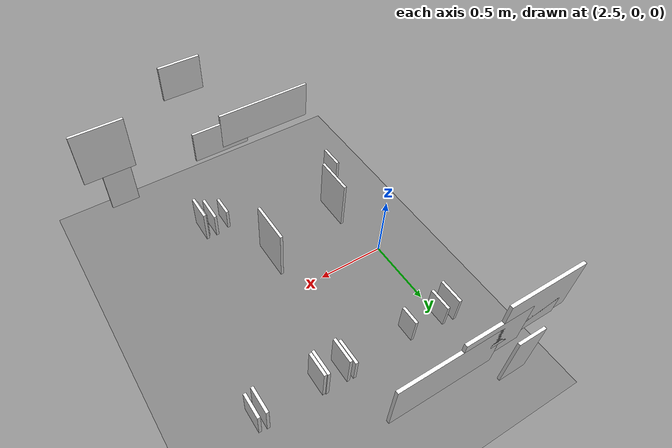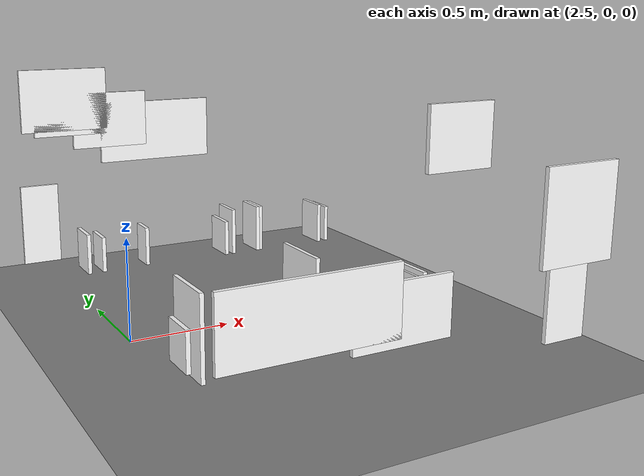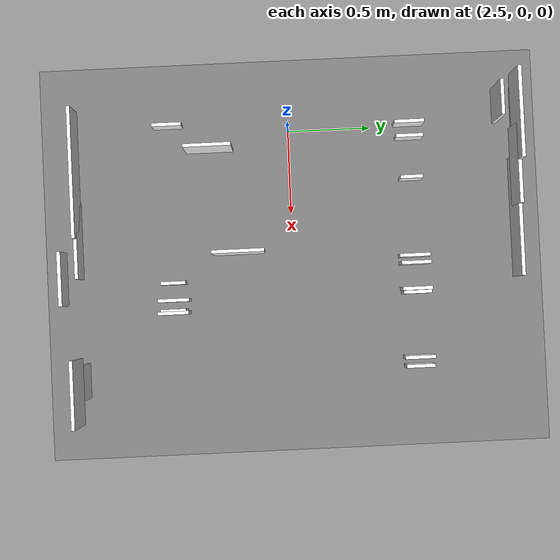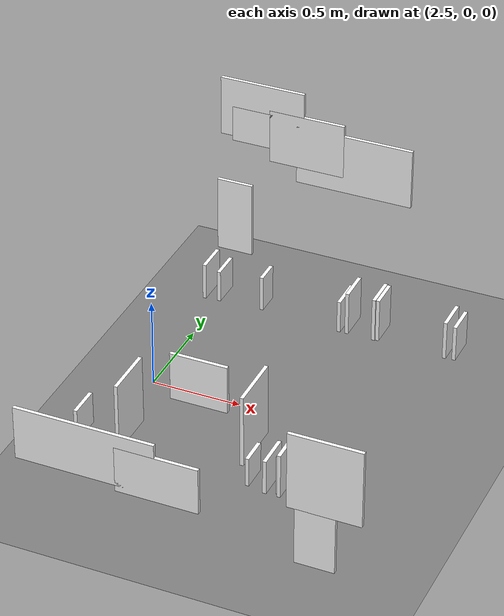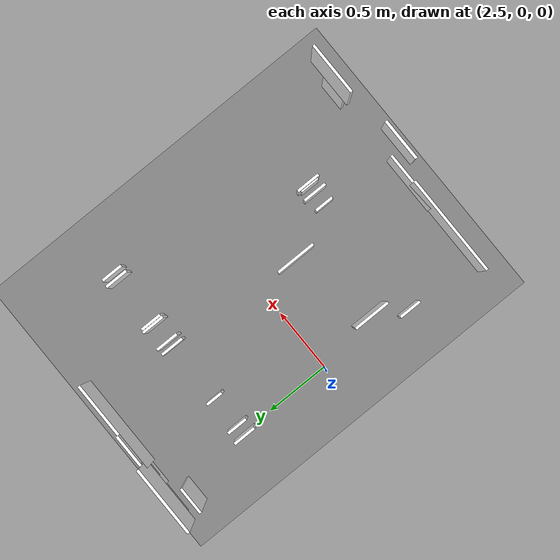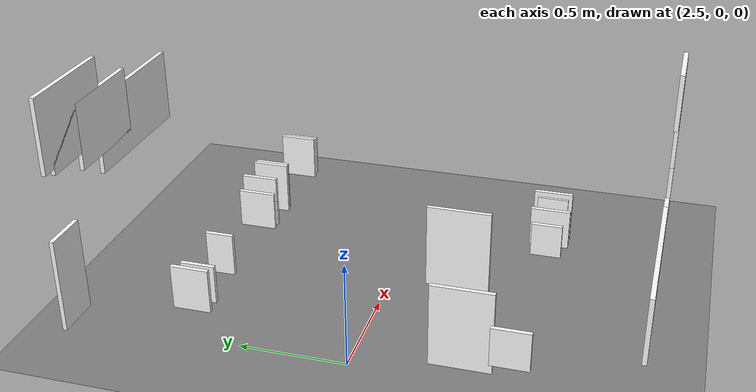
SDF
<sdf version="1.9">
 <world name="tunnel_world">
  <model name="ground_plane">
   <static>true</static>
   <link name="ground">
    <collision name="ground_collision">
     <geometry><plane><normal>0 0 1</normal><size>100 100</size></plane></geometry>
    </collision>
    <visual name="ground_visual">
     <geometry><plane><normal>0 0 1</normal><size>100 100</size></plane></geometry>
     <material>
      <diffuse>0.50 0.50 0.50 1</diffuse>
      <emissive>0.08 0.08 0.08 1</emissive>
      <ambient>0.5 0.5 0.5</ambient>
     </material>
    </visual>
   </link>
  </model>
  <model name="defect_crack_05">
   <static>true</static>
   <pose>3.364 -1.25 1.076 0 0 0</pose>
   <link name="link">
    <visual name="visual">
     <laser_retro>500</laser_retro>
     <geometry><box><size>0.291 0.02 0.254</size></box></geometry>
     <material>
      <ambient>1 1 1 1</ambient>
      <diffuse>1 1 1 1</diffuse>
      <emissive>0.05 0.05 0.05 1</emissive>
      <specular>0.05 0.05 0.05 1</specular>
      <pbr>
       <metal>
        <albedo_map>file:///home/ylf/workspace/inspection_robot/data_gen/textures_data1/crack_12.png</albedo_map>
        <metalness>0.0</metalness>
        <roughness>0.9</roughness>
       </metal>
      </pbr>
     </material>
    </visual>
    <collision name="collision"><geometry><box><size>0.291 0.02 0.254</size></box></geometry></collision>
   </link>
  </model>
  <model name="defect_crack_13">
   <static>true</static>
   <pose>2.619 1.25 0.903 0 0 0</pose>
   <link name="link">
    <visual name="visual">
     <laser_retro>500</laser_retro>
     <geometry><box><size>0.434 0.02 0.211</size></box></geometry>
     <material>
      <ambient>1 1 1 1</ambient>
      <diffuse>1 1 1 1</diffuse>
      <emissive>0.05 0.05 0.05 1</emissive>
      <specular>0.05 0.05 0.05 1</specular>
      <pbr>
       <metal>
        <albedo_map>file:///home/ylf/workspace/inspection_robot/data_gen/textures_data1/crack_9.png</albedo_map>
        <metalness>0.0</metalness>
        <roughness>0.9</roughness>
       </metal>
      </pbr>
     </material>
    </visual>
    <collision name="collision"><geometry><box><size>0.434 0.02 0.211</size></box></geometry></collision>
   </link>
  </model>
  <model name="defect_crack_22">
   <static>true</static>
   <pose>2.841 1.25 0.875 0 0 0</pose>
   <link name="link">
    <visual name="visual">
     <laser_retro>500</laser_retro>
     <geometry><box><size>0.438 0.02 0.317</size></box></geometry>
     <material>
      <ambient>1 1 1 1</ambient>
      <diffuse>1 1 1 1</diffuse>
      <emissive>0.05 0.05 0.05 1</emissive>
      <specular>0.05 0.05 0.05 1</specular>
      <pbr>
       <metal>
        <albedo_map>file:///home/ylf/workspace/inspection_robot/data_gen/textures_data1/crack_21.png</albedo_map>
        <metalness>0.0</metalness>
        <roughness>0.9</roughness>
       </metal>
      </pbr>
     </material>
    </visual>
    <collision name="collision"><geometry><box><size>0.438 0.02 0.317</size></box></geometry></collision>
   </link>
  </model>
  <model name="defect_equip_bracket_loose_01">
   <static>true</static>
   <pose>2.411 1.25 0.299 0 0 0</pose>
   <link name="link">
    <visual name="visual">
     <laser_retro>760</laser_retro>
     <geometry><box><size>0.209 0.02 0.449</size></box></geometry>
     <material>
      <ambient>1 1 1 1</ambient>
      <diffuse>1 1 1 1</diffuse>
      <emissive>0.05 0.05 0.05 1</emissive>
      <specular>0.05 0.05 0.05 1</specular>
      <pbr>
       <metal>
        <albedo_map>file:///home/ylf/workspace/inspection_robot/data_gen/textures_data1/equip_bracket_loose_12.png</albedo_map>
        <metalness>0.0</metalness>
        <roughness>0.9</roughness>
       </metal>
      </pbr>
     </material>
    </visual>
    <collision name="collision"><geometry><box><size>0.209 0.02 0.449</size></box></geometry></collision>
   </link>
  </model>
  <model name="defect_equip_bracket_loose_08">
   <static>true</static>
   <pose>3.955 -1.25 0.338 0 0 0</pose>
   <link name="link">
    <visual name="visual">
     <laser_retro>760</laser_retro>
     <geometry><box><size>0.209 0.02 0.321</size></box></geometry>
     <material>
      <ambient>1 1 1 1</ambient>
      <diffuse>1 1 1 1</diffuse>
      <emissive>0.05 0.05 0.05 1</emissive>
      <specular>0.05 0.05 0.05 1</specular>
      <pbr>
       <metal>
        <albedo_map>file:///home/ylf/workspace/inspection_robot/data_gen/textures_data1/equip_bracket_loose_9.png</albedo_map>
        <metalness>0.0</metalness>
        <roughness>0.9</roughness>
       </metal>
      </pbr>
     </material>
    </visual>
    <collision name="collision"><geometry><box><size>0.209 0.02 0.321</size></box></geometry></collision>
   </link>
  </model>
  <model name="defect_equip_intrusion_05">
   <static>true</static>
   <pose>3.229 -0.325 0.22 0 0 0</pose>
   <link name="link">
    <visual name="visual">
     <laser_retro>900</laser_retro>
     <geometry><box><size>0.02 0.309 0.42</size></box></geometry>
     <material>
      <ambient>1 1 1 1</ambient>
      <diffuse>1 1 1 1</diffuse>
      <emissive>0.05 0.05 0.05 1</emissive>
      <specular>0.05 0.05 0.05 1</specular>
      <pbr>
       <metal>
        <albedo_map>file:///home/ylf/workspace/inspection_robot/data_gen/textures_data1/equip_intrusion_3.png</albedo_map>
        <metalness>0.0</metalness>
        <roughness>0.9</roughness>
       </metal>
      </pbr>
     </material>
    </visual>
   </link>
  </model>
  <model name="defect_equip_intrusion_10">
   <static>true</static>
   <pose>2.598 -0.481 0.21 0 0 0</pose>
   <link name="link">
    <visual name="visual">
     <laser_retro>900</laser_retro>
     <geometry><box><size>0.02 0.284 0.4</size></box></geometry>
     <material>
      <ambient>1 1 1 1</ambient>
      <diffuse>1 1 1 1</diffuse>
      <emissive>0.05 0.05 0.05 1</emissive>
      <specular>0.05 0.05 0.05 1</specular>
      <pbr>
       <metal>
        <albedo_map>file:///home/ylf/workspace/inspection_robot/data_gen/textures_data1/equip_intrusion_2.png</albedo_map>
        <metalness>0.0</metalness>
        <roughness>0.9</roughness>
       </metal>
      </pbr>
     </material>
    </visual>
   </link>
  </model>
  <model name="defect_leakage_03">
   <static>true</static>
   <pose>3.119 1.25 0.798 0 0 0</pose>
   <link name="link">
    <visual name="visual">
     <laser_retro>300</laser_retro>
     <geometry><box><size>0.671 0.02 0.348</size></box></geometry>
     <material>
      <ambient>1 1 1 1</ambient>
      <diffuse>1 1 1 1</diffuse>
      <emissive>0.05 0.05 0.05 1</emissive>
      <specular>0.05 0.05 0.05 1</specular>
      <pbr>
       <metal>
        <albedo_map>file:///home/ylf/workspace/inspection_robot/data_gen/textures_data1/leakage_12.png</albedo_map>
        <metalness>0.0</metalness>
        <roughness>0.9</roughness>
       </metal>
      </pbr>
     </material>
    </visual>
    <collision name="collision"><geometry><box><size>0.671 0.02 0.348</size></box></geometry></collision>
   </link>
  </model>
  <model name="defect_leakage_15">
   <static>true</static>
   <pose>2.745 -1.25 0.488 0 0 0</pose>
   <link name="link">
    <visual name="visual">
     <laser_retro>300</laser_retro>
     <geometry><box><size>0.757 0.02 0.301</size></box></geometry>
     <material>
      <ambient>1 1 1 1</ambient>
      <diffuse>1 1 1 1</diffuse>
      <emissive>0.05 0.05 0.05 1</emissive>
      <specular>0.05 0.05 0.05 1</specular>
      <pbr>
       <metal>
        <albedo_map>file:///home/ylf/workspace/inspection_robot/data_gen/textures_data1/leakage_19.png</albedo_map>
        <metalness>0.0</metalness>
        <roughness>0.9</roughness>
       </metal>
      </pbr>
     </material>
    </visual>
    <collision name="collision"><geometry><box><size>0.757 0.02 0.301</size></box></geometry></collision>
   </link>
  </model>
  <model name="defect_rail_fastener_broken_08">
   <static>true</static>
   <pose>2.508 0.717 0.261 0 0 0</pose>
   <link name="link">
    <visual name="visual">
     <laser_retro>450</laser_retro>
     <geometry><box><size>0.02 0.176 0.211</size></box></geometry>
     <material>
      <ambient>1 1 1 1</ambient>
      <diffuse>1 1 1 1</diffuse>
      <emissive>0.05 0.05 0.05 1</emissive>
      <specular>0.05 0.05 0.05 1</specular>
      <pbr>
       <metal>
        <albedo_map>file:///home/ylf/workspace/inspection_robot/data_gen/textures_data1/rail_fastener_broken_23.png</albedo_map>
        <metalness>0.0</metalness>
        <roughness>0.9</roughness>
       </metal>
      </pbr>
     </material>
    </visual>
   </link>
  </model>
  <model name="defect_rail_fastener_broken_09">
   <static>true</static>
   <pose>3.494 0.717 0.282 0 0 0</pose>
   <link name="link">
    <visual name="visual">
     <laser_retro>450</laser_retro>
     <geometry><box><size>0.02 0.175 0.253</size></box></geometry>
     <material>
      <ambient>1 1 1 1</ambient>
      <diffuse>1 1 1 1</diffuse>
      <emissive>0.05 0.05 0.05 1</emissive>
      <specular>0.05 0.05 0.05 1</specular>
      <pbr>
       <metal>
        <albedo_map>file:///home/ylf/workspace/inspection_robot/data_gen/textures_data1/rail_fastener_broken_18.png</albedo_map>
        <metalness>0.0</metalness>
        <roughness>0.9</roughness>
       </metal>
      </pbr>
     </material>
    </visual>
   </link>
  </model>
  <model name="defect_rail_fastener_broken_16">
   <static>true</static>
   <pose>3.342 0.717 0.281 0 0 0</pose>
   <link name="link">
    <visual name="visual">
     <laser_retro>450</laser_retro>
     <geometry><box><size>0.02 0.175 0.252</size></box></geometry>
     <material>
      <ambient>1 1 1 1</ambient>
      <diffuse>1 1 1 1</diffuse>
      <emissive>0.05 0.05 0.05 1</emissive>
      <specular>0.05 0.05 0.05 1</specular>
      <pbr>
       <metal>
        <albedo_map>file:///home/ylf/workspace/inspection_robot/data_gen/textures_data1/rail_fastener_broken_10.png</albedo_map>
        <metalness>0.0</metalness>
        <roughness>0.9</roughness>
       </metal>
      </pbr>
     </material>
    </visual>
   </link>
  </model>
  <model name="defect_rail_fastener_loose_02">
   <static>true</static>
   <pose>3.562 -0.717 0.268 0 0 0</pose>
   <link name="link">
    <visual name="visual">
     <laser_retro>380</laser_retro>
     <geometry><box><size>0.02 0.147 0.226</size></box></geometry>
     <material>
      <ambient>1 1 1 1</ambient>
      <diffuse>1 1 1 1</diffuse>
      <emissive>0.05 0.05 0.05 1</emissive>
      <specular>0.05 0.05 0.05 1</specular>
      <pbr>
       <metal>
        <albedo_map>file:///home/ylf/workspace/inspection_robot/data_gen/textures_data1/rail_fastener_loose_1.png</albedo_map>
        <metalness>0.0</metalness>
        <roughness>0.9</roughness>
       </metal>
      </pbr>
     </material>
    </visual>
   </link>
  </model>
  <model name="defect_rail_fastener_loose_03">
   <static>true</static>
   <pose>3.898 0.717 0.266 0 0 0</pose>
   <link name="link">
    <visual name="visual">
     <laser_retro>380</laser_retro>
     <geometry><box><size>0.02 0.178 0.222</size></box></geometry>
     <material>
      <ambient>1 1 1 1</ambient>
      <diffuse>1 1 1 1</diffuse>
      <emissive>0.05 0.05 0.05 1</emissive>
      <specular>0.05 0.05 0.05 1</specular>
      <pbr>
       <metal>
        <albedo_map>file:///home/ylf/workspace/inspection_robot/data_gen/textures_data1/rail_fastener_loose_15.png</albedo_map>
        <metalness>0.0</metalness>
        <roughness>0.9</roughness>
       </metal>
      </pbr>
     </material>
    </visual>
   </link>
  </model>
  <model name="defect_rail_fastener_loose_18">
   <static>true</static>
   <pose>3.95 0.717 0.257 0 0 0</pose>
   <link name="link">
    <visual name="visual">
     <laser_retro>380</laser_retro>
     <geometry><box><size>0.02 0.167 0.204</size></box></geometry>
     <material>
      <ambient>1 1 1 1</ambient>
      <diffuse>1 1 1 1</diffuse>
      <emissive>0.05 0.05 0.05 1</emissive>
      <specular>0.05 0.05 0.05 1</specular>
      <pbr>
       <metal>
        <albedo_map>file:///home/ylf/workspace/inspection_robot/data_gen/textures_data1/rail_fastener_loose_21.png</albedo_map>
        <metalness>0.0</metalness>
        <roughness>0.9</roughness>
       </metal>
      </pbr>
     </material>
    </visual>
   </link>
  </model>
  <model name="defect_rail_fastener_loose_19">
   <static>true</static>
   <pose>2.836 0.717 0.257 0 0 0</pose>
   <link name="link">
    <visual name="visual">
     <laser_retro>380</laser_retro>
     <geometry><box><size>0.02 0.131 0.205</size></box></geometry>
     <material>
      <ambient>1 1 1 1</ambient>
      <diffuse>1 1 1 1</diffuse>
      <emissive>0.05 0.05 0.05 1</emissive>
      <specular>0.05 0.05 0.05 1</specular>
      <pbr>
       <metal>
        <albedo_map>file:///home/ylf/workspace/inspection_robot/data_gen/textures_data1/rail_fastener_loose_12.png</albedo_map>
        <metalness>0.0</metalness>
        <roughness>0.9</roughness>
       </metal>
      </pbr>
     </material>
    </visual>
   </link>
  </model>
  <model name="defect_rail_fastener_loose_20">
   <static>true</static>
   <pose>2.46 -0.717 0.247 0 0 0</pose>
   <link name="link">
    <visual name="visual">
     <laser_retro>380</laser_retro>
     <geometry><box><size>0.02 0.173 0.184</size></box></geometry>
     <material>
      <ambient>1 1 1 1</ambient>
      <diffuse>1 1 1 1</diffuse>
      <emissive>0.05 0.05 0.05 1</emissive>
      <specular>0.05 0.05 0.05 1</specular>
      <pbr>
       <metal>
        <albedo_map>file:///home/ylf/workspace/inspection_robot/data_gen/textures_data1/rail_fastener_loose_6.png</albedo_map>
        <metalness>0.0</metalness>
        <roughness>0.9</roughness>
       </metal>
      </pbr>
     </material>
    </visual>
   </link>
  </model>
  <model name="defect_rail_fastener_missing_01">
   <static>true</static>
   <pose>3.297 0.717 0.25 0 0 0</pose>
   <link name="link">
    <visual name="visual">
     <laser_retro>520</laser_retro>
     <geometry><box><size>0.02 0.18 0.189</size></box></geometry>
     <material>
      <ambient>1 1 1 1</ambient>
      <diffuse>1 1 1 1</diffuse>
      <emissive>0.05 0.05 0.05 1</emissive>
      <specular>0.05 0.05 0.05 1</specular>
      <pbr>
       <metal>
        <albedo_map>file:///home/ylf/workspace/inspection_robot/data_gen/textures_data1/rail_fastener_missing_8.png</albedo_map>
        <metalness>0.0</metalness>
        <roughness>0.9</roughness>
       </metal>
      </pbr>
     </material>
    </visual>
   </link>
  </model>
  <model name="defect_rail_fastener_missing_06">
   <static>true</static>
   <pose>3.575 -0.717 0.28 0 0 0</pose>
   <link name="link">
    <visual name="visual">
     <laser_retro>520</laser_retro>
     <geometry><box><size>0.02 0.183 0.251</size></box></geometry>
     <material>
      <ambient>1 1 1 1</ambient>
      <diffuse>1 1 1 1</diffuse>
      <emissive>0.05 0.05 0.05 1</emissive>
      <specular>0.05 0.05 0.05 1</specular>
      <pbr>
       <metal>
        <albedo_map>file:///home/ylf/workspace/inspection_robot/data_gen/textures_data1/rail_fastener_missing_7.png</albedo_map>
        <metalness>0.0</metalness>
        <roughness>0.9</roughness>
       </metal>
      </pbr>
     </material>
    </visual>
   </link>
  </model>
  <model name="defect_rail_fastener_missing_09">
   <static>true</static>
   <pose>3.5 -0.717 0.252 0 0 0</pose>
   <link name="link">
    <visual name="visual">
     <laser_retro>520</laser_retro>
     <geometry><box><size>0.02 0.187 0.194</size></box></geometry>
     <material>
      <ambient>1 1 1 1</ambient>
      <diffuse>1 1 1 1</diffuse>
      <emissive>0.05 0.05 0.05 1</emissive>
      <specular>0.05 0.05 0.05 1</specular>
      <pbr>
       <metal>
        <albedo_map>file:///home/ylf/workspace/inspection_robot/data_gen/textures_data1/rail_fastener_missing_20.png</albedo_map>
        <metalness>0.0</metalness>
        <roughness>0.9</roughness>
       </metal>
      </pbr>
     </material>
    </visual>
   </link>
  </model>
  <model name="defect_rail_fastener_missing_13">
   <static>true</static>
   <pose>3.515 0.717 0.281 0 0 0</pose>
   <link name="link">
    <visual name="visual">
     <laser_retro>520</laser_retro>
     <geometry><box><size>0.02 0.164 0.252</size></box></geometry>
     <material>
      <ambient>1 1 1 1</ambient>
      <diffuse>1 1 1 1</diffuse>
      <emissive>0.05 0.05 0.05 1</emissive>
      <specular>0.05 0.05 0.05 1</specular>
      <pbr>
       <metal>
        <albedo_map>file:///home/ylf/workspace/inspection_robot/data_gen/textures_data1/rail_fastener_missing_10.png</albedo_map>
        <metalness>0.0</metalness>
        <roughness>0.9</roughness>
       </metal>
      </pbr>
     </material>
    </visual>
   </link>
  </model>
  <model name="defect_rail_fastener_missing_17">
   <static>true</static>
   <pose>3.398 -0.717 0.238 0 0 0</pose>
   <link name="link">
    <visual name="visual">
     <laser_retro>520</laser_retro>
     <geometry><box><size>0.02 0.146 0.165</size></box></geometry>
     <material>
      <ambient>1 1 1 1</ambient>
      <diffuse>1 1 1 1</diffuse>
      <emissive>0.05 0.05 0.05 1</emissive>
      <specular>0.05 0.05 0.05 1</specular>
      <pbr>
       <metal>
        <albedo_map>file:///home/ylf/workspace/inspection_robot/data_gen/textures_data1/rail_fastener_missing_5.png</albedo_map>
        <metalness>0.0</metalness>
        <roughness>0.9</roughness>
       </metal>
      </pbr>
     </material>
    </visual>
   </link>
  </model>
  <model name="defect_rail_fastener_missing_18">
   <static>true</static>
   <pose>2.59 0.717 0.247 0 0 0</pose>
   <link name="link">
    <visual name="visual">
     <laser_retro>520</laser_retro>
     <geometry><box><size>0.02 0.16 0.185</size></box></geometry>
     <material>
      <ambient>1 1 1 1</ambient>
      <diffuse>1 1 1 1</diffuse>
      <emissive>0.05 0.05 0.05 1</emissive>
      <specular>0.05 0.05 0.05 1</specular>
      <pbr>
       <metal>
        <albedo_map>file:///home/ylf/workspace/inspection_robot/data_gen/textures_data1/rail_fastener_missing_14.png</albedo_map>
        <metalness>0.0</metalness>
        <roughness>0.9</roughness>
       </metal>
      </pbr>
     </material>
    </visual>
   </link>
  </model>
  <model name="defect_spalling_01">
   <static>true</static>
   <pose>3.132 -1.25 0.434 0 0 0</pose>
   <link name="link">
    <visual name="visual">
     <laser_retro>700</laser_retro>
     <geometry><box><size>0.445 0.02 0.26</size></box></geometry>
     <material>
      <ambient>1 1 1 1</ambient>
      <diffuse>1 1 1 1</diffuse>
      <emissive>0.05 0.05 0.05 1</emissive>
      <specular>0.05 0.05 0.05 1</specular>
      <pbr>
       <metal>
        <albedo_map>file:///home/ylf/workspace/inspection_robot/data_gen/textures_data1/spalling_3.png</albedo_map>
        <metalness>0.0</metalness>
        <roughness>0.9</roughness>
       </metal>
      </pbr>
     </material>
    </visual>
    <collision name="collision"><geometry><box><size>0.445 0.02 0.26</size></box></geometry></collision>
   </link>
  </model>
  <model name="defect_spalling_05">
   <static>true</static>
   <pose>2.578 1.25 1.001 0 0 0</pose>
   <link name="link">
    <visual name="visual">
     <laser_retro>700</laser_retro>
     <geometry><box><size>0.492 0.02 0.35</size></box></geometry>
     <material>
      <ambient>1 1 1 1</ambient>
      <diffuse>1 1 1 1</diffuse>
      <emissive>0.05 0.05 0.05 1</emissive>
      <specular>0.05 0.05 0.05 1</specular>
      <pbr>
       <metal>
        <albedo_map>file:///home/ylf/workspace/inspection_robot/data_gen/textures_data1/spalling_4.png</albedo_map>
        <metalness>0.0</metalness>
        <roughness>0.9</roughness>
       </metal>
      </pbr>
     </material>
    </visual>
    <collision name="collision"><geometry><box><size>0.492 0.02 0.35</size></box></geometry></collision>
   </link>
  </model>
  <model name="defect_spalling_19">
   <static>true</static>
   <pose>4.001 -1.25 0.711 0 0 0</pose>
   <link name="link">
    <visual name="visual">
     <laser_retro>700</laser_retro>
     <geometry><box><size>0.383 0.02 0.427</size></box></geometry>
     <material>
      <ambient>1 1 1 1</ambient>
      <diffuse>1 1 1 1</diffuse>
      <emissive>0.05 0.05 0.05 1</emissive>
      <specular>0.05 0.05 0.05 1</specular>
      <pbr>
       <metal>
        <albedo_map>file:///home/ylf/workspace/inspection_robot/data_gen/textures_data1/spalling_16.png</albedo_map>
        <metalness>0.0</metalness>
        <roughness>0.9</roughness>
       </metal>
      </pbr>
     </material>
    </visual>
    <collision name="collision"><geometry><box><size>0.383 0.02 0.427</size></box></geometry></collision>
   </link>
  </model>
 </world>
</sdf>
